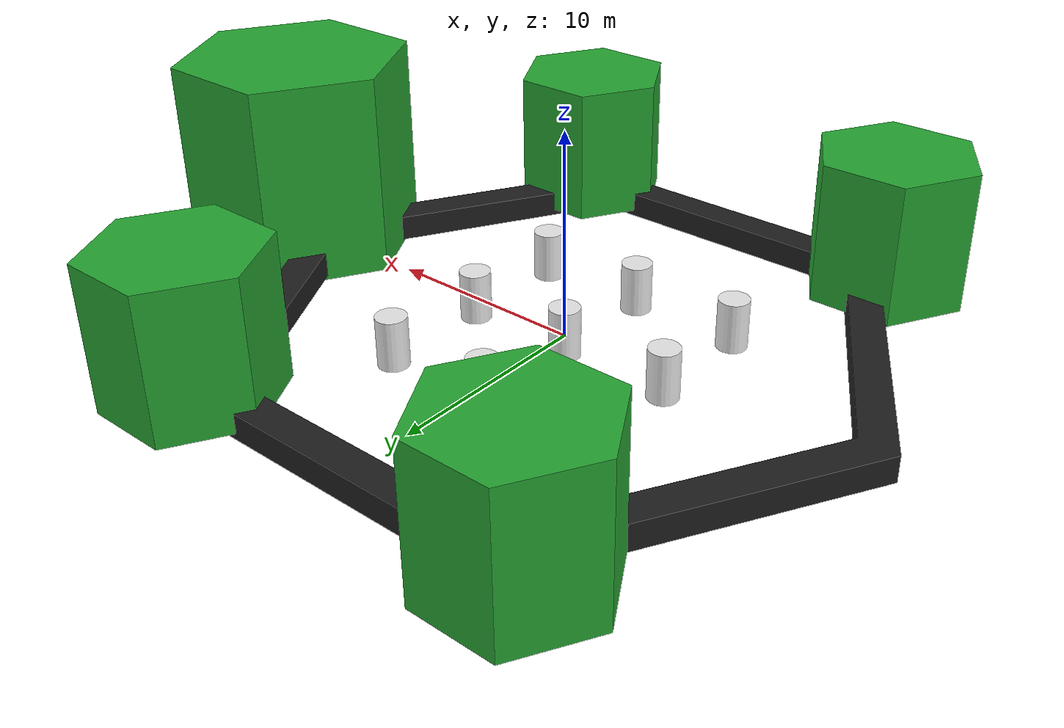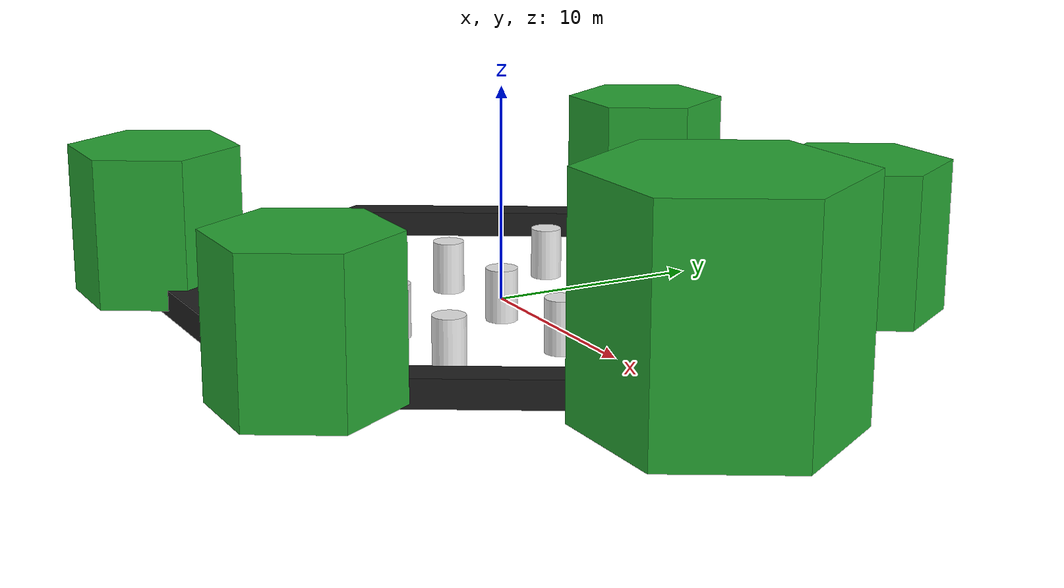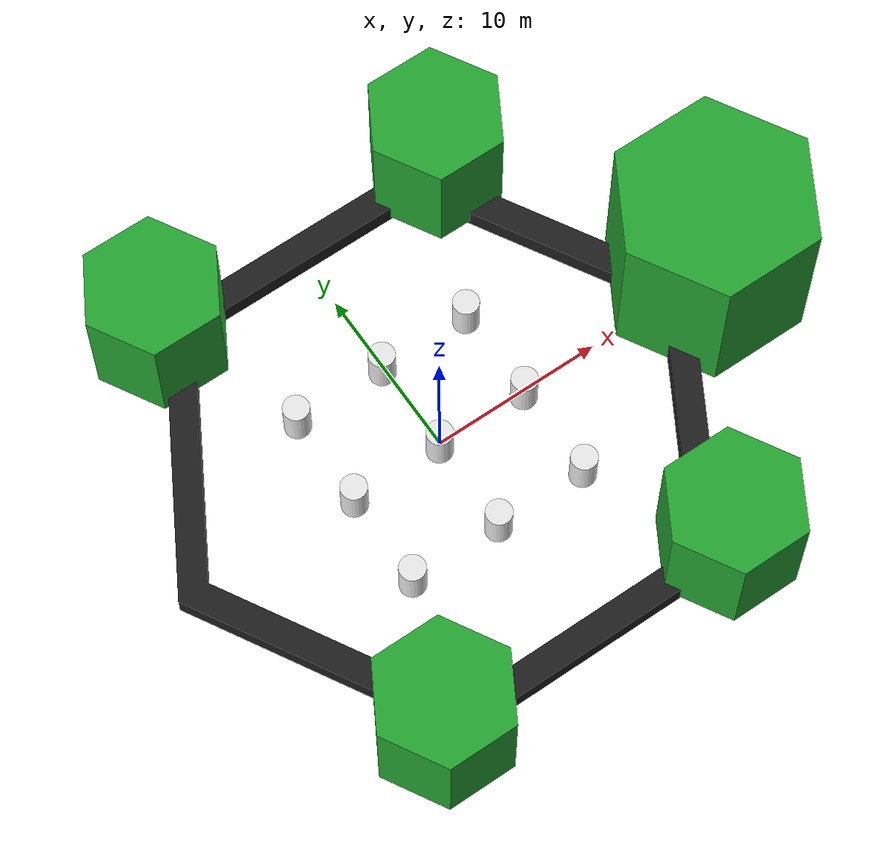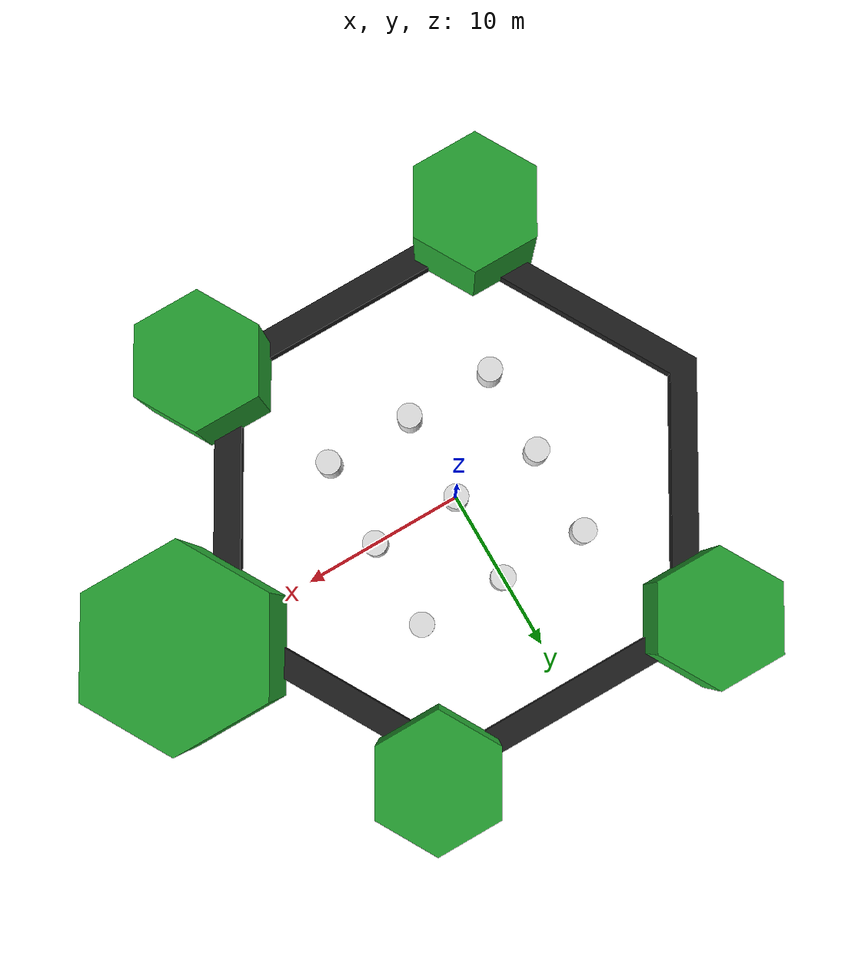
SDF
<sdf version='1.4'>
    <!-- Draw Circle -->
    <model name='ros_symbol'>
      <static>1</static>
      <link name='symbol'>
        <collision name='one_one'>
          <pose>-5.5 -5.5 0.25 0 0 0</pose>
          <geometry>
            <cylinder>
              <radius>0.75</radius>
              <length>2.5</length>
            </cylinder>
          </geometry>
          <max_contacts>10</max_contacts>
          <surface>
            <bounce/>
            <friction>
              <ode/>
            </friction>
            <contact>
              <ode/>
            </contact>
          </surface>
        </collision>

        <visual name='one_one'>
          <pose>-5.5 -5.5 0.25 0 0 0</pose>
          <geometry>
            <cylinder>
              <radius>0.75</radius>
              <length>2.5</length>
            </cylinder>
          </geometry>
          <material>
            <script>
              <uri>file://media/materials/scripts/gazebo.material</uri>
              <name>Gazebo/White</name>
            </script>
          </material>
        </visual>

        <collision name='one_two'>
          <pose>-5.5 0 0.25 0 0 0</pose>
          <geometry>
            <cylinder>
              <radius>0.75</radius>
              <length>2.5</length>
            </cylinder>
          </geometry>
          <max_contacts>10</max_contacts>
          <surface>
            <bounce/>
            <friction>
              <ode/>
            </friction>
            <contact>
              <ode/>
            </contact>
          </surface>
        </collision>

        <visual name='one_two'>
          <pose>-5.5 0 0.25 0 0 0</pose>
          <geometry>
            <cylinder>
              <radius>0.75</radius>
              <length>2.5</length>
            </cylinder>
          </geometry>
          <material>
            <script>
              <uri>file://media/materials/scripts/gazebo.material</uri>
              <name>Gazebo/White</name>
            </script>
          </material>
        </visual>

        <collision name='one_three'>
          <pose>-5.5 5.5 0.25 0 0 0</pose>
          <geometry>
            <cylinder>
              <radius>0.75</radius>
              <length>2.5</length>
            </cylinder>
          </geometry>
          <max_contacts>10</max_contacts>
          <surface>
            <bounce/>
            <friction>
              <ode/>
            </friction>
            <contact>
              <ode/>
            </contact>
          </surface>
        </collision>

        <visual name='one_three'>
          <pose>-5.5 5.5 0.25 0 0 0</pose>
          <geometry>
            <cylinder>
              <radius>0.75</radius>
              <length>2.5</length>
            </cylinder>
          </geometry>
          <material>
            <script>
              <uri>file://media/materials/scripts/gazebo.material</uri>
              <name>Gazebo/White</name>
            </script>
          </material>
        </visual>

        <collision name='two_one'>
          <pose>0 -5.5 0.25 0 0 0</pose>
          <geometry>
            <cylinder>
              <radius>0.75</radius>
              <length>2.5</length>
            </cylinder>
          </geometry>
          <max_contacts>10</max_contacts>
          <surface>
            <bounce/>
            <friction>
              <ode/>
            </friction>
            <contact>
              <ode/>
            </contact>
          </surface>
        </collision>

        <visual name='two_one'>
          <pose>0 -5.5 0.25 0 0 0</pose>
          <geometry>
            <cylinder>
              <radius>0.75</radius>
              <length>2.5</length>
            </cylinder>
          </geometry>
          <material>
            <script>
              <uri>file://media/materials/scripts/gazebo.material</uri>
              <name>Gazebo/White</name>
            </script>
          </material>
        </visual>

        <collision name='two_two'>
          <pose>0 0 0.25 0 0 0</pose>
          <geometry>
            <cylinder>
              <radius>0.75</radius>
              <length>2.5</length>
            </cylinder>
          </geometry>
          <max_contacts>10</max_contacts>
          <surface>
            <bounce/>
            <friction>
              <ode/>
            </friction>
            <contact>
              <ode/>
            </contact>
          </surface>
        </collision>

        <visual name='two_two'>
          <pose>0 0 0.25 0 0 0</pose>
          <geometry>
            <cylinder>
              <radius>0.75</radius>
              <length>2.5</length>
            </cylinder>
          </geometry>
          <material>
            <script>
              <uri>file://media/materials/scripts/gazebo.material</uri>
              <name>Gazebo/White</name>
            </script>
          </material>
        </visual>

        <collision name='two_three'>
          <pose>0 5.5 0.25 0 0 0</pose>
          <geometry>
            <cylinder>
              <radius>0.75</radius>
              <length>2.5</length>
            </cylinder>
          </geometry>
          <max_contacts>10</max_contacts>
          <surface>
            <bounce/>
            <friction>
              <ode/>
            </friction>
            <contact>
              <ode/>
            </contact>
          </surface>
        </collision>

        <visual name='two_three'>
          <pose>0 5.5 0.25 0 0 0</pose>
          <geometry>
            <cylinder>
              <radius>0.75</radius>
              <length>2.5</length>
            </cylinder>
          </geometry>
          <material>
            <script>
              <uri>file://media/materials/scripts/gazebo.material</uri>
              <name>Gazebo/White</name>
            </script>
          </material>
        </visual>

        <collision name='three_one'>
          <pose>5.5 -5.5 0.25 0 0 0</pose>
          <geometry>
            <cylinder>
              <radius>0.75</radius>
              <length>2.5</length>
            </cylinder>
          </geometry>
          <max_contacts>10</max_contacts>
          <surface>
            <bounce/>
            <friction>
              <ode/>
            </friction>
            <contact>
              <ode/>
            </contact>
          </surface>
        </collision>

        <visual name='three_one'>
          <pose>5.5 -5.5 0.25 0 0 0</pose>
          <geometry>
            <cylinder>
              <radius>0.75</radius>
              <length>2.5</length>
            </cylinder>
          </geometry>
          <material>
            <script>
              <uri>file://media/materials/scripts/gazebo.material</uri>
              <name>Gazebo/White</name>
            </script>
          </material>
        </visual>

        <collision name='three_two'>
          <pose>5.5 0 0.25 0 0 0</pose>
          <geometry>
            <cylinder>
              <radius>0.75</radius>
              <length>2.5</length>
            </cylinder>
          </geometry>
          <max_contacts>10</max_contacts>
          <surface>
            <bounce/>
            <friction>
              <ode/>
            </friction>
            <contact>
              <ode/>
            </contact>
          </surface>
        </collision>

        <visual name='three_two'>
          <pose>5.5 0 0.25 0 0 0</pose>
          <geometry>
            <cylinder>
              <radius>0.75</radius>
              <length>2.5</length>
            </cylinder>
          </geometry>
          <material>
            <script>
              <uri>file://media/materials/scripts/gazebo.material</uri>
              <name>Gazebo/White</name>
            </script>
          </material>
        </visual>

        <collision name='three_three'>
          <pose>5.5 5.5 0.25 0 0 0</pose>
          <geometry>
            <cylinder>
              <radius>0.75</radius>
              <length>2.5</length>
            </cylinder>
          </geometry>
          <max_contacts>10</max_contacts>
          <surface>
            <bounce/>
            <friction>
              <ode/>
            </friction>
            <contact>
              <ode/>
            </contact>
          </surface>
        </collision>

        <visual name='three_three'>
          <pose>5.5 5.5 0.25 0 0 0</pose>
          <geometry>
            <cylinder>
              <radius>0.75</radius>
              <length>2.5</length>
            </cylinder>
          </geometry>
          <material>
            <script>
              <uri>file://media/materials/scripts/gazebo.material</uri>
              <name>Gazebo/White</name>
            </script>
          </material>
        </visual>

        <!-- Draw Hexagon -->
        <collision name='head'>
          <pose>17.5 0 -0.5 0 0 0</pose>
          <geometry>
            <mesh>
              <uri>model://turtlebot3_world/meshes/hexagon.dae</uri>
              <scale>4.0 4.0 4.0</scale>
            </mesh>
          </geometry>
          <max_contacts>10</max_contacts>
          <surface>
            <bounce/>
            <friction>
              <ode/>
            </friction>
            <contact>
              <ode/>
            </contact>
          </surface>
        </collision>

        <visual name='head'>
          <pose>17.5 0 -0.5 0 0 0</pose>
          <geometry>
            <mesh>
              <uri>model://turtlebot3_world/meshes/hexagon.dae</uri>
              <scale>4.0 4.0 4.0</scale>
            </mesh>
          </geometry>
          <material>
            <script>
              <uri>file://media/materials/scripts/gazebo.material</uri>
              <name>Gazebo/Green</name>
            </script>
          </material>
        </visual>

        <collision name='left_hand'>
          <pose>9.0 13.5 0 0 0 0</pose>
          <geometry>
            <mesh>
              <uri>model://turtlebot3_world/meshes/hexagon.dae</uri>
              <scale>2.75 2.75 2.75</scale>
            </mesh>
          </geometry>
          <max_contacts>10</max_contacts>
          <surface>
            <bounce/>
            <friction>
              <ode/>
            </friction>
            <contact>
              <ode/>
            </contact>
          </surface>
        </collision>

        <visual name='left_hand'>
          <pose>9.0 13.5 0 0 0 0</pose>
          <geometry>
            <mesh>
              <uri>model://turtlebot3_world/meshes/hexagon.dae</uri>
              <scale>2.75 2.75 2.75</scale>
            </mesh>
          </geometry>
          <material>
            <script>
              <uri>file://media/materials/scripts/gazebo.material</uri>
              <name>Gazebo/Green</name>
            </script>
          </material>
        </visual>

        <collision name='right_hand'>
          <pose>9.0 -13.5 0 0 0 0</pose>
          <geometry>
            <mesh>
              <uri>model://turtlebot3_world/meshes/hexagon.dae</uri>
              <scale>2.75 2.75 2.75</scale>
            </mesh>
          </geometry>
          <max_contacts>10</max_contacts>
          <surface>
            <bounce/>
            <friction>
              <ode/>
            </friction>
            <contact>
              <ode/>
            </contact>
          </surface>
        </collision>

        <visual name='right_hand'>
          <pose>9.0 -13.5 0 0 0 0</pose>
          <geometry>
            <mesh>
              <uri>model://turtlebot3_world/meshes/hexagon.dae</uri>
              <scale>2.75 2.75 2.75</scale>
            </mesh>
          </geometry>
          <material>
            <script>
              <uri>file://media/materials/scripts/gazebo.material</uri>
              <name>Gazebo/Green</name>
            </script>
          </material>
        </visual>

        <collision name='left_foot'>
          <pose>-9.0 13.5 0 0 0 0</pose>
          <geometry>
            <mesh>
              <uri>model://turtlebot3_world/meshes/hexagon.dae</uri>
              <scale>2.75 2.75 2.75</scale>
            </mesh>
          </geometry>
          <max_contacts>10</max_contacts>
          <surface>
            <bounce/>
            <friction>
              <ode/>
            </friction>
            <contact>
              <ode/>
            </contact>
          </surface>
        </collision>

        <visual name='left_foot'>
          <pose>-9.0 13.5 0 0 0 0</pose>
          <geometry>
            <mesh>
              <uri>model://turtlebot3_world/meshes/hexagon.dae</uri>
              <scale>2.75 2.75 2.75</scale>
            </mesh>
          </geometry>
          <material>
            <script>
              <uri>file://media/materials/scripts/gazebo.material</uri>
              <name>Gazebo/Green</name>
            </script>
          </material>
        </visual>

        <collision name='right_foot'>
          <pose>-9.0 -13.5 0 0 0 0</pose>
          <geometry>
            <mesh>
              <uri>model://turtlebot3_world/meshes/hexagon.dae</uri>
              <scale>2.75 2.75 2.75</scale>
            </mesh>
          </geometry>
          <max_contacts>10</max_contacts>
          <surface>
            <bounce/>
            <friction>
              <ode/>
            </friction>
            <contact>
              <ode/>
            </contact>
          </surface>
        </collision>

        <visual name='right_foot'>
          <pose>-9.0 -13.5 0 0 0 0</pose>
          <geometry>
            <mesh>
              <uri>model://turtlebot3_world/meshes/hexagon.dae</uri>
              <scale>2.75 2.75 2.75</scale>
            </mesh>
          </geometry>
          <material>
            <script>
              <uri>file://media/materials/scripts/gazebo.material</uri>
              <name>Gazebo/Green</name>
            </script>
          </material>
        </visual>

        <!-- Draw Wall -->
        <collision name='body'>
        <pose>0 0 -0.3 0 0 -1.5708</pose>
        <geometry>
          <mesh>
            <uri>model://turtlebot3_world/meshes/wall.dae</uri>
            <scale>1.25 1.25 0.25</scale>
          </mesh>
        </geometry>
        <max_contacts>10</max_contacts>
        <surface>
          <bounce/>
          <friction>
            <ode/>
          </friction>
          <contact>
            <ode/>
          </contact>
        </surface>
      </collision>

      <visual name='body'>
        <pose>0 0 -0.3 0 0 -1.5708</pose>
        <geometry>
          <mesh>
            <uri>model://turtlebot3_world/meshes/wall.dae</uri>
            <scale>1.25 1.25 0.25</scale>
          </mesh>
        </geometry>
        <material>
          <script>
            <uri>file://media/materials/scripts/gazebo.material</uri>
            <name>Gazebo/FlatBlack</name>
          </script>
        </material>
      </visual>
    </link>
  </model>
</sdf>
